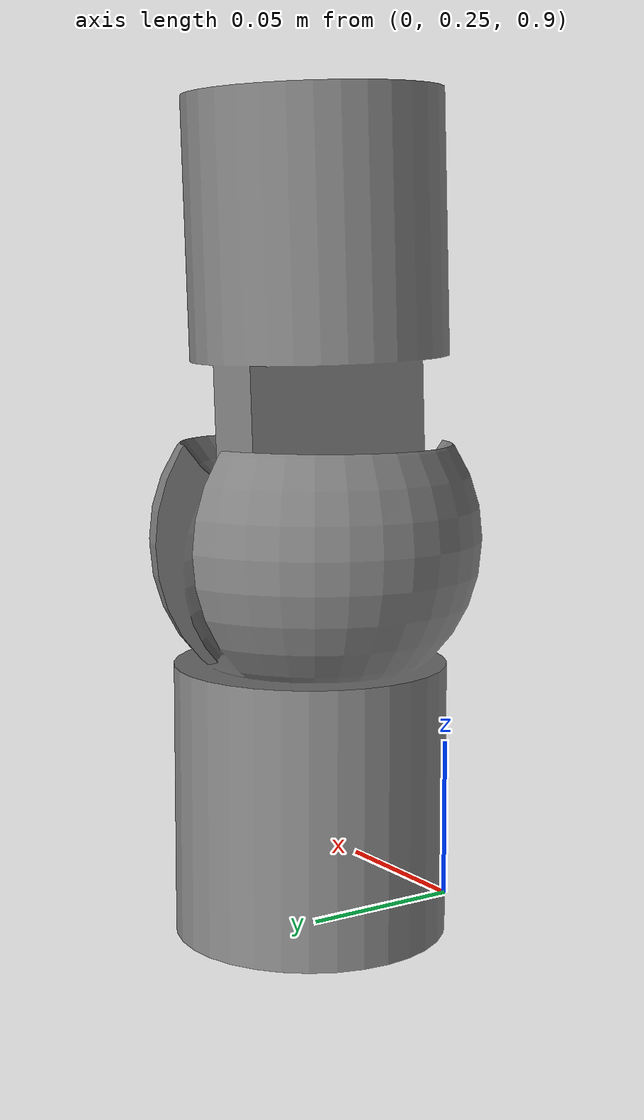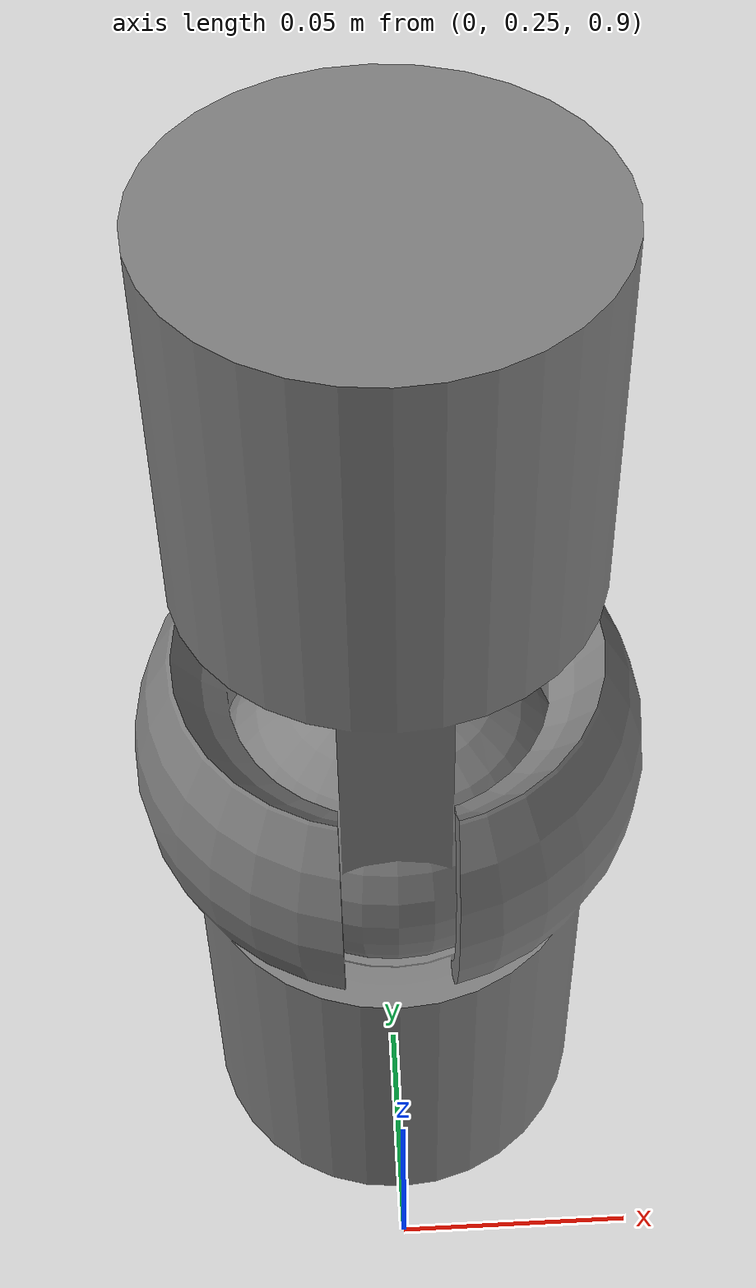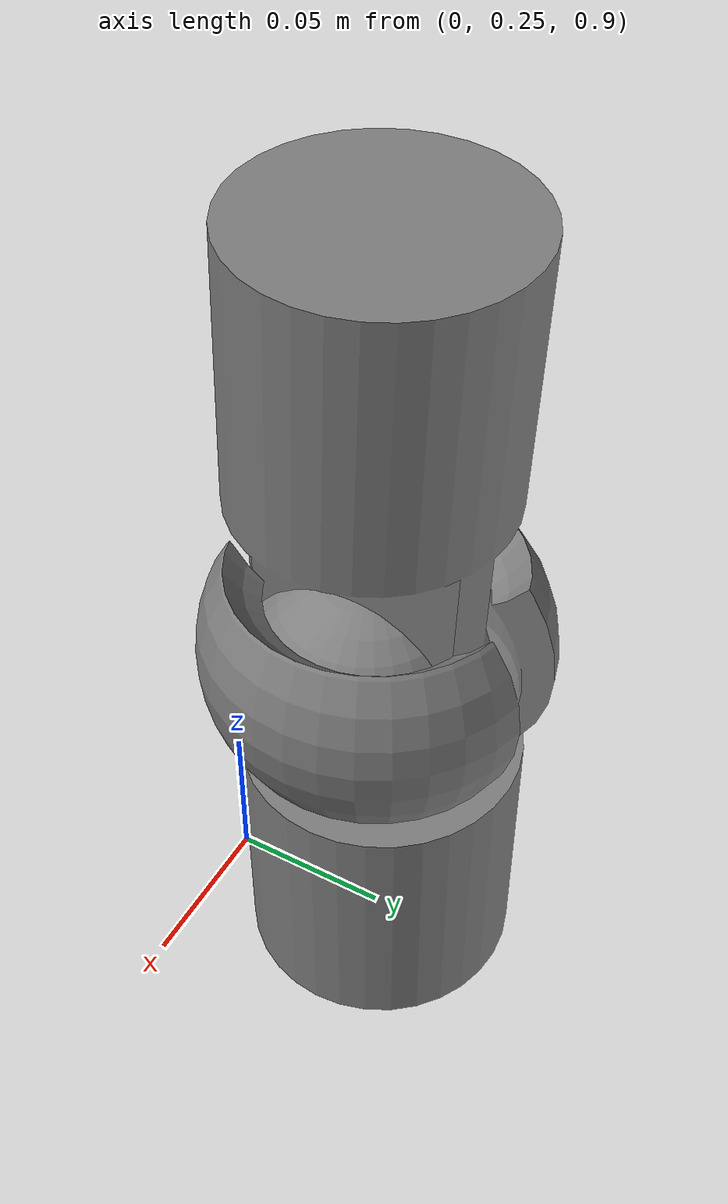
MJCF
<mujoco model="ball_joint">
  <asset>
    <mesh name="ball_joint_base"     file="ball_joint/ball_joint_base.stl"      scale="0.005 0.005 0.005"/>
    <mesh name="ball_joint_link"       file="ball_joint/ball_joint_link.stl"      scale="0.005 0.005 0.005"/>
  </asset>

  <worldbody>
    <body name="torso" pos="0 0.3 0.9" euler="0 0 0">
      <joint name="joint0" type="free"/>
      <geom type="mesh" mesh="ball_joint_base"/>
      <body name="ball_joint_link" pos="0 0 0.0">
        <joint axis="1 0 0" name="joint1" pos="0 0 0.11005" type="hinge"/>
        <geom type="mesh" mesh="ball_joint_link"/>
      </body>
    </body>
  </worldbody>

  <actuator>

    <!--position name='joint1' ctrllimited="true" ctrlrange="-3.141592 3.141592" joint='joint1' kp="500" /-->

    <!--motor gear="500" joint="joint1" name="joint1"/-->
  </actuator>

</mujoco>
